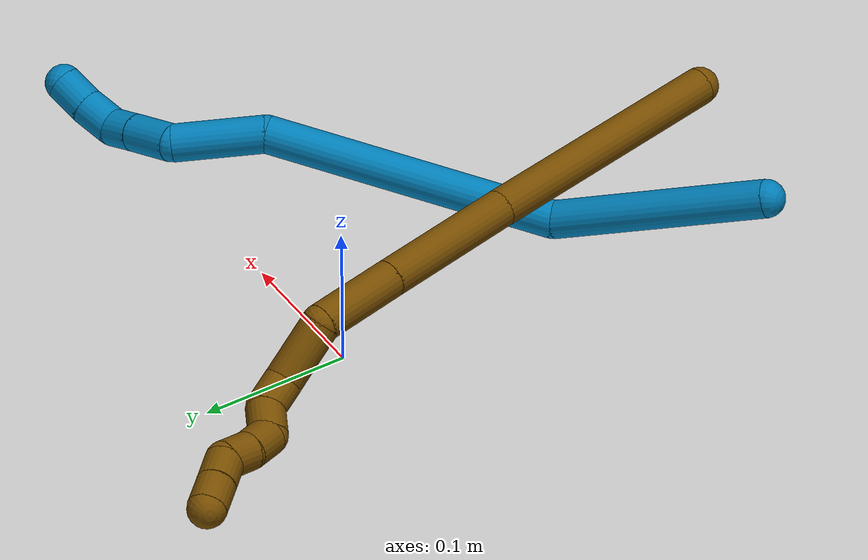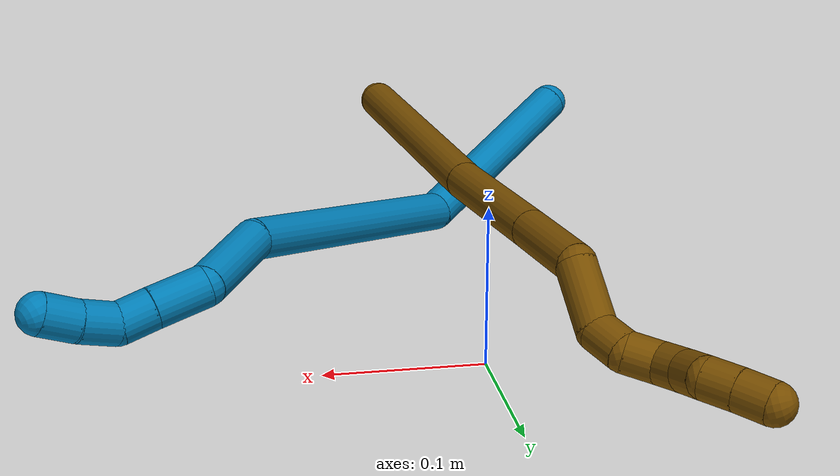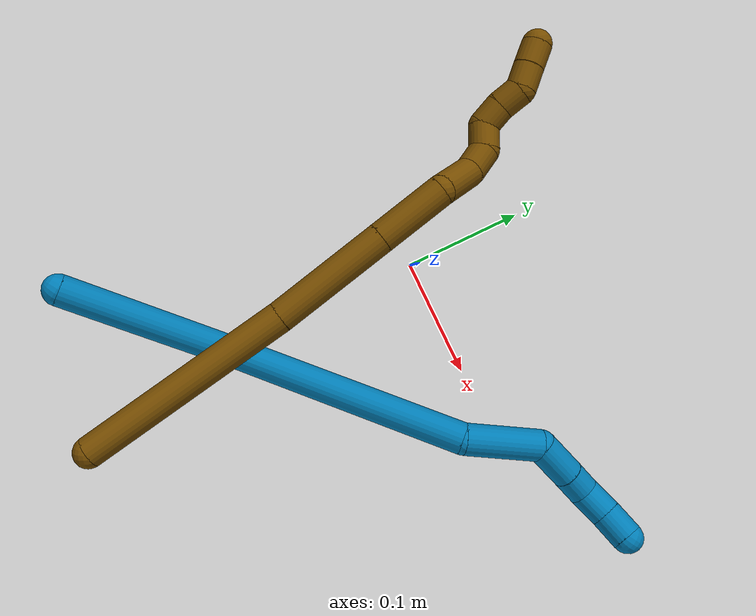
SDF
<sdf version="1.7">
 <world name="default">
  <model name="9">
   <static>0</static>
   <link name="9">
    <collision name="collision-cylinder-e_1_1_4">
     <pose>-0.017421 0.004072 -0.070111 -3.08358 -0.243157 2.67526</pose>
     <geometry><cylinder><radius>0.0125</radius><length>0.144715</length></cylinder></geometry>
     <surface>
      <friction><ode><mu>1.16</mu><mu2>1.16</mu2><slip1>0</slip1><slip2>0</slip2></ode></friction>
      <contact><ode><kp>1e+06</kp><kd>1</kd><max_vel>0</max_vel><min_depth>0.001</min_depth></ode></contact>
     </surface>
    </collision>
    <visual name="visual-cylinder-e_1_1_4">
     <pose>-0.017421 0.004072 -0.070111 -3.08358 -0.243157 2.67526</pose>
     <geometry><cylinder><radius>0.0125</radius><length>0.144715</length></cylinder></geometry>
     <material><ambient>0 0.490196 0.709804 1</ambient></material>
    </visual>
    <collision name="collision-cylinder-e_2_4_5">
     <pose>-0.025074 0.049761 -0.226993 -2.69438 0.101159 -0.438072</pose>
     <geometry><cylinder><radius>0.0125</radius><length>0.19346</length></cylinder></geometry>
     <surface>
      <friction><ode><mu>1.16</mu><mu2>1.16</mu2><slip1>0</slip1><slip2>0</slip2></ode></friction>
      <contact><ode><kp>1e+06</kp><kd>1</kd><max_vel>0</max_vel><min_depth>0.001</min_depth></ode></contact>
     </surface>
    </collision>
    <visual name="visual-cylinder-e_2_4_5">
     <pose>-0.025074 0.049761 -0.226993 -2.69438 0.101159 -0.438072</pose>
     <geometry><cylinder><radius>0.0125</radius><length>0.19346</length></cylinder></geometry>
     <material><ambient>0 0.490196 0.709804 1</ambient></material>
    </visual>
    <collision name="collision-cylinder-e_3_5_6">
     <pose>-0.023821 0.103067 -0.340692 -2.73207 -0.282326 1.20022</pose>
     <geometry><cylinder><radius>0.0125</radius><length>0.06113</length></cylinder></geometry>
     <surface>
      <friction><ode><mu>1.16</mu><mu2>1.16</mu2><slip1>0</slip1><slip2>0</slip2></ode></friction>
      <contact><ode><kp>1e+06</kp><kd>1</kd><max_vel>0</max_vel><min_depth>0.001</min_depth></ode></contact>
     </surface>
    </collision>
    <visual name="visual-cylinder-e_3_5_6">
     <pose>-0.023821 0.103067 -0.340692 -2.73207 -0.282326 1.20022</pose>
     <geometry><cylinder><radius>0.0125</radius><length>0.06113</length></cylinder></geometry>
     <material><ambient>0 0.490196 0.709804 1</ambient></material>
    </visual>
    <collision name="collision-cylinder-e_4_6_7">
     <pose>-0.030659 0.111776 -0.383862 2.96018 0.101248 1.01647</pose>
     <geometry><cylinder><radius>0.0125</radius><length>0.033197</length></cylinder></geometry>
     <surface>
      <friction><ode><mu>1.16</mu><mu2>1.16</mu2><slip1>0</slip1><slip2>0</slip2></ode></friction>
      <contact><ode><kp>1e+06</kp><kd>1</kd><max_vel>0</max_vel><min_depth>0.001</min_depth></ode></contact>
     </surface>
    </collision>
    <visual name="visual-cylinder-e_4_6_7">
     <pose>-0.030659 0.111776 -0.383862 2.96018 0.101248 1.01647</pose>
     <geometry><cylinder><radius>0.0125</radius><length>0.033197</length></cylinder></geometry>
     <material><ambient>0 0.490196 0.709804 1</ambient></material>
    </visual>
    <collision name="collision-cylinder-e_5_7_8">
     <pose>-0.028093 0.106565 -0.410459 2.92938 0.083665 0.748913</pose>
     <geometry><cylinder><radius>0.0125</radius><length>0.021258</length></cylinder></geometry>
     <surface>
      <friction><ode><mu>1.16</mu><mu2>1.16</mu2><slip1>0</slip1><slip2>0</slip2></ode></friction>
      <contact><ode><kp>1e+06</kp><kd>1</kd><max_vel>0</max_vel><min_depth>0.001</min_depth></ode></contact>
     </surface>
    </collision>
    <visual name="visual-cylinder-e_5_7_8">
     <pose>-0.028093 0.106565 -0.410459 2.92938 0.083665 0.748913</pose>
     <geometry><cylinder><radius>0.0125</radius><length>0.021258</length></cylinder></geometry>
     <material><ambient>0 0.490196 0.709804 1</ambient></material>
    </visual>
    <collision name="collision-cylinder-e_6_8_9">
     <pose>-0.021882 0.106139 -0.431165 -2.96898 0.468865 -2.44644</pose>
     <geometry><cylinder><radius>0.0125</radius><length>0.023559</length></cylinder></geometry>
     <surface>
      <friction><ode><mu>1.16</mu><mu2>1.16</mu2><slip1>0</slip1><slip2>0</slip2></ode></friction>
      <contact><ode><kp>1e+06</kp><kd>1</kd><max_vel>0</max_vel><min_depth>0.001</min_depth></ode></contact>
     </surface>
    </collision>
    <visual name="visual-cylinder-e_6_8_9">
     <pose>-0.021882 0.106139 -0.431165 -2.96898 0.468865 -2.44644</pose>
     <geometry><cylinder><radius>0.0125</radius><length>0.023559</length></cylinder></geometry>
     <material><ambient>0 0.490196 0.709804 1</ambient></material>
    </visual>
    <collision name="collision-cylinder-e_7_9_2">
     <pose>-0.010359 0.109957 -0.450798 -2.92804 0.578359 -2.45001</pose>
     <geometry><cylinder><radius>0.0125</radius><length>0.022681</length></cylinder></geometry>
     <surface>
      <friction><ode><mu>1.16</mu><mu2>1.16</mu2><slip1>0</slip1><slip2>0</slip2></ode></friction>
      <contact><ode><kp>1e+06</kp><kd>1</kd><max_vel>0</max_vel><min_depth>0.001</min_depth></ode></contact>
     </surface>
    </collision>
    <visual name="visual-cylinder-e_7_9_2">
     <pose>-0.010359 0.109957 -0.450798 -2.92804 0.578359 -2.45001</pose>
     <geometry><cylinder><radius>0.0125</radius><length>0.022681</length></cylinder></geometry>
     <material><ambient>0 0.490196 0.709804 1</ambient></material>
    </visual>
    <collision name="collision-sphere-2">
     <pose>-0.00416 0.111969 -0.460078 0 -0 0</pose>
     <geometry><sphere><radius>0.0125</radius></sphere></geometry>
     <surface>
      <friction><ode><mu>1.16</mu><mu2>1.16</mu2><slip1>0</slip1><slip2>0</slip2></ode></friction>
      <contact><ode><kp>1e+06</kp><kd>1</kd><max_vel>0</max_vel><min_depth>0.001</min_depth></ode></contact>
     </surface>
    </collision>
    <visual name="visual-sphere-2">
     <pose>-0.00416 0.111969 -0.460078 0 -0 0</pose>
     <geometry><sphere><radius>0.0125</radius></sphere></geometry>
     <material><ambient>0 0.490196 0.709804 1</ambient></material>
    </visual>
    <collision name="collision-sphere-9">
     <pose>-0.016559 0.107944 -0.441517 0 -0 0</pose>
     <geometry><sphere><radius>0.0125</radius></sphere></geometry>
     <surface>
      <friction><ode><mu>1.16</mu><mu2>1.16</mu2><slip1>0</slip1><slip2>0</slip2></ode></friction>
      <contact><ode><kp>1e+06</kp><kd>1</kd><max_vel>0</max_vel><min_depth>0.001</min_depth></ode></contact>
     </surface>
    </collision>
    <visual name="visual-sphere-9">
     <pose>-0.016559 0.107944 -0.441517 0 -0 0</pose>
     <geometry><sphere><radius>0.0125</radius></sphere></geometry>
     <material><ambient>0 0.490196 0.709804 1</ambient></material>
    </visual>
    <collision name="collision-sphere-4">
     <pose>-0.034843 0.008144 -0.140221 0 -0 0</pose>
     <geometry><sphere><radius>0.0125</radius></sphere></geometry>
     <surface>
      <friction><ode><mu>1.16</mu><mu2>1.16</mu2><slip1>0</slip1><slip2>0</slip2></ode></friction>
      <contact><ode><kp>1e+06</kp><kd>1</kd><max_vel>0</max_vel><min_depth>0.001</min_depth></ode></contact>
     </surface>
    </collision>
    <visual name="visual-sphere-4">
     <pose>-0.034843 0.008144 -0.140221 0 -0 0</pose>
     <geometry><sphere><radius>0.0125</radius></sphere></geometry>
     <material><ambient>0 0.490196 0.709804 1</ambient></material>
    </visual>
    <collision name="collision-sphere-1">
     <geometry><sphere><radius>0.0125</radius></sphere></geometry>
     <surface>
      <friction><ode><mu>1.16</mu><mu2>1.16</mu2><slip1>0</slip1><slip2>0</slip2></ode></friction>
      <contact><ode><kp>1e+06</kp><kd>1</kd><max_vel>0</max_vel><min_depth>0.001</min_depth></ode></contact>
     </surface>
    </collision>
    <visual name="visual-sphere-1">
     <geometry><sphere><radius>0.0125</radius></sphere></geometry>
     <material><ambient>0 0.490196 0.709804 1</ambient></material>
    </visual>
    <collision name="collision-sphere-8">
     <pose>-0.027204 0.104334 -0.420813 0 -0 0</pose>
     <geometry><sphere><radius>0.0125</radius></sphere></geometry>
     <surface>
      <friction><ode><mu>1.16</mu><mu2>1.16</mu2><slip1>0</slip1><slip2>0</slip2></ode></friction>
      <contact><ode><kp>1e+06</kp><kd>1</kd><max_vel>0</max_vel><min_depth>0.001</min_depth></ode></contact>
     </surface>
    </collision>
    <visual name="visual-sphere-8">
     <pose>-0.027204 0.104334 -0.420813 0 -0 0</pose>
     <geometry><sphere><radius>0.0125</radius></sphere></geometry>
     <material><ambient>0 0.490196 0.709804 1</ambient></material>
    </visual>
    <collision name="collision-sphere-5">
     <pose>-0.015306 0.091378 -0.313764 0 -0 0</pose>
     <geometry><sphere><radius>0.0125</radius></sphere></geometry>
     <surface>
      <friction><ode><mu>1.16</mu><mu2>1.16</mu2><slip1>0</slip1><slip2>0</slip2></ode></friction>
      <contact><ode><kp>1e+06</kp><kd>1</kd><max_vel>0</max_vel><min_depth>0.001</min_depth></ode></contact>
     </surface>
    </collision>
    <visual name="visual-sphere-5">
     <pose>-0.015306 0.091378 -0.313764 0 -0 0</pose>
     <geometry><sphere><radius>0.0125</radius></sphere></geometry>
     <material><ambient>0 0.490196 0.709804 1</ambient></material>
    </visual>
    <collision name="collision-sphere-6">
     <pose>-0.032336 0.114755 -0.36762 0 -0 0</pose>
     <geometry><sphere><radius>0.0125</radius></sphere></geometry>
     <surface>
      <friction><ode><mu>1.16</mu><mu2>1.16</mu2><slip1>0</slip1><slip2>0</slip2></ode></friction>
      <contact><ode><kp>1e+06</kp><kd>1</kd><max_vel>0</max_vel><min_depth>0.001</min_depth></ode></contact>
     </surface>
    </collision>
    <visual name="visual-sphere-6">
     <pose>-0.032336 0.114755 -0.36762 0 -0 0</pose>
     <geometry><sphere><radius>0.0125</radius></sphere></geometry>
     <material><ambient>0 0.490196 0.709804 1</ambient></material>
    </visual>
    <collision name="collision-sphere-7">
     <pose>-0.028981 0.108796 -0.400105 0 -0 0</pose>
     <geometry><sphere><radius>0.0125</radius></sphere></geometry>
     <surface>
      <friction><ode><mu>1.16</mu><mu2>1.16</mu2><slip1>0</slip1><slip2>0</slip2></ode></friction>
      <contact><ode><kp>1e+06</kp><kd>1</kd><max_vel>0</max_vel><min_depth>0.001</min_depth></ode></contact>
     </surface>
    </collision>
    <visual name="visual-sphere-7">
     <pose>-0.028981 0.108796 -0.400105 0 -0 0</pose>
     <geometry><sphere><radius>0.0125</radius></sphere></geometry>
     <material><ambient>0 0.490196 0.709804 1</ambient></material>
    </visual>
    <inertial>
     <pose>-0.022387 0.054974 -0.233475 0 -0 0</pose>
     <mass>0.5</mass>
     <inertia>
      <ixx>0.000211</ixx>
      <ixy>0</ixy>
      <ixz>0</ixz>
      <iyy>-0.000375</iyy>
      <iyz>0</iyz>
      <izz>-0.000317</izz>
     </inertia>
    </inertial>
   </link>
   <pose>-0.100203 -0.252939 0.089243 1.29206 -0.811917 -0.843308</pose>
  </model>
  <model name="12">
   <static>0</static>
   <link name="12">
    <collision name="collision-cylinder-e_1_1_4">
     <pose>-0.063791 0.046393 -0.039397 -2.27483 -0.808878 1.49296</pose>
     <geometry><cylinder><radius>0.0125</radius><length>0.176337</length></cylinder></geometry>
     <surface>
      <friction><ode><mu>1.16</mu><mu2>1.16</mu2><slip1>0</slip1><slip2>0</slip2></ode></friction>
      <contact><ode><kp>1e+06</kp><kd>1</kd><max_vel>0</max_vel><min_depth>0.001</min_depth></ode></contact>
     </surface>
    </collision>
    <visual name="visual-cylinder-e_1_1_4">
     <pose>-0.063791 0.046393 -0.039397 -2.27483 -0.808878 1.49296</pose>
     <geometry><cylinder><radius>0.0125</radius><length>0.176337</length></cylinder></geometry>
     <material><ambient>0.466667 0.301961 0 1</ambient></material>
    </visual>
    <collision name="collision-cylinder-e_2_4_5">
     <pose>-0.162237 0.117219 -0.103154 -2.35468 -0.787599 1.57177</pose>
     <geometry><cylinder><radius>0.0125</radius><length>0.097803</length></cylinder></geometry>
     <surface>
      <friction><ode><mu>1.16</mu><mu2>1.16</mu2><slip1>0</slip1><slip2>0</slip2></ode></friction>
      <contact><ode><kp>1e+06</kp><kd>1</kd><max_vel>0</max_vel><min_depth>0.001</min_depth></ode></contact>
     </surface>
    </collision>
    <visual name="visual-cylinder-e_2_4_5">
     <pose>-0.162237 0.117219 -0.103154 -2.35468 -0.787599 1.57177</pose>
     <geometry><cylinder><radius>0.0125</radius><length>0.097803</length></cylinder></geometry>
     <material><ambient>0.466667 0.301961 0 1</ambient></material>
    </visual>
    <collision name="collision-cylinder-e_3_5_6">
     <pose>-0.217602 0.156578 -0.142095 -2.34455 -0.781664 1.54913</pose>
     <geometry><cylinder><radius>0.0125</radius><length>0.058796</length></cylinder></geometry>
     <surface>
      <friction><ode><mu>1.16</mu><mu2>1.16</mu2><slip1>0</slip1><slip2>0</slip2></ode></friction>
      <contact><ode><kp>1e+06</kp><kd>1</kd><max_vel>0</max_vel><min_depth>0.001</min_depth></ode></contact>
     </surface>
    </collision>
    <visual name="visual-cylinder-e_3_5_6">
     <pose>-0.217602 0.156578 -0.142095 -2.34455 -0.781664 1.54913</pose>
     <geometry><cylinder><radius>0.0125</radius><length>0.058796</length></cylinder></geometry>
     <material><ambient>0.466667 0.301961 0 1</ambient></material>
    </visual>
    <collision name="collision-cylinder-e_4_6_7">
     <pose>-0.24463 0.19175 -0.159075 -1.68874 -0.300529 0.337569</pose>
     <geometry><cylinder><radius>0.0125</radius><length>0.042691</length></cylinder></geometry>
     <surface>
      <friction><ode><mu>1.16</mu><mu2>1.16</mu2><slip1>0</slip1><slip2>0</slip2></ode></friction>
      <contact><ode><kp>1e+06</kp><kd>1</kd><max_vel>0</max_vel><min_depth>0.001</min_depth></ode></contact>
     </surface>
    </collision>
    <visual name="visual-cylinder-e_4_6_7">
     <pose>-0.24463 0.19175 -0.159075 -1.68874 -0.300529 0.337569</pose>
     <geometry><cylinder><radius>0.0125</radius><length>0.042691</length></cylinder></geometry>
     <material><ambient>0.466667 0.301961 0 1</ambient></material>
    </visual>
    <collision name="collision-cylinder-e_5_7_8">
     <pose>-0.255646 0.21969 -0.168294 -2.29614 -0.428549 0.901133</pose>
     <geometry><cylinder><radius>0.0125</radius><length>0.022605</length></cylinder></geometry>
     <surface>
      <friction><ode><mu>1.16</mu><mu2>1.16</mu2><slip1>0</slip1><slip2>0</slip2></ode></friction>
      <contact><ode><kp>1e+06</kp><kd>1</kd><max_vel>0</max_vel><min_depth>0.001</min_depth></ode></contact>
     </surface>
    </collision>
    <visual name="visual-cylinder-e_5_7_8">
     <pose>-0.255646 0.21969 -0.168294 -2.29614 -0.428549 0.901133</pose>
     <geometry><cylinder><radius>0.0125</radius><length>0.022605</length></cylinder></geometry>
     <material><ambient>0.466667 0.301961 0 1</ambient></material>
    </visual>
    <collision name="collision-cylinder-e_6_8_9">
     <pose>-0.259269 0.232943 -0.184116 -2.58818 0.101164 -0.352818</pose>
     <geometry><cylinder><radius>0.0125</radius><length>0.02127</length></cylinder></geometry>
     <surface>
      <friction><ode><mu>1.16</mu><mu2>1.16</mu2><slip1>0</slip1><slip2>0</slip2></ode></friction>
      <contact><ode><kp>1e+06</kp><kd>1</kd><max_vel>0</max_vel><min_depth>0.001</min_depth></ode></contact>
     </surface>
    </collision>
    <visual name="visual-cylinder-e_6_8_9">
     <pose>-0.259269 0.232943 -0.184116 -2.58818 0.101164 -0.352818</pose>
     <geometry><cylinder><radius>0.0125</radius><length>0.02127</length></cylinder></geometry>
     <material><ambient>0.466667 0.301961 0 1</ambient></material>
    </visual>
    <collision name="collision-cylinder-e_7_9_10">
     <pose>-0.26456 0.242246 -0.200102 -2.64983 -0.676799 1.90269</pose>
     <geometry><cylinder><radius>0.0125</radius><length>0.020327</length></cylinder></geometry>
     <surface>
      <friction><ode><mu>1.16</mu><mu2>1.16</mu2><slip1>0</slip1><slip2>0</slip2></ode></friction>
      <contact><ode><kp>1e+06</kp><kd>1</kd><max_vel>0</max_vel><min_depth>0.001</min_depth></ode></contact>
     </surface>
    </collision>
    <visual name="visual-cylinder-e_7_9_10">
     <pose>-0.26456 0.242246 -0.200102 -2.64983 -0.676799 1.90269</pose>
     <geometry><cylinder><radius>0.0125</radius><length>0.020327</length></cylinder></geometry>
     <material><ambient>0.466667 0.301961 0 1</ambient></material>
    </visual>
    <collision name="collision-cylinder-e_8_10_11">
     <pose>-0.278709 0.248909 -0.212725 -2.66343 -0.886397 2.19285</pose>
     <geometry><cylinder><radius>0.0125</radius><length>0.02009</length></cylinder></geometry>
     <surface>
      <friction><ode><mu>1.16</mu><mu2>1.16</mu2><slip1>0</slip1><slip2>0</slip2></ode></friction>
      <contact><ode><kp>1e+06</kp><kd>1</kd><max_vel>0</max_vel><min_depth>0.001</min_depth></ode></contact>
     </surface>
    </collision>
    <visual name="visual-cylinder-e_8_10_11">
     <pose>-0.278709 0.248909 -0.212725 -2.66343 -0.886397 2.19285</pose>
     <geometry><cylinder><radius>0.0125</radius><length>0.02009</length></cylinder></geometry>
     <material><ambient>0.466667 0.301961 0 1</ambient></material>
    </visual>
    <collision name="collision-cylinder-e_9_11_12">
     <pose>-0.289025 0.256964 -0.226568 -2.58257 -0.255988 0.843011</pose>
     <geometry><cylinder><radius>0.0125</radius><length>0.020008</length></cylinder></geometry>
     <surface>
      <friction><ode><mu>1.16</mu><mu2>1.16</mu2><slip1>0</slip1><slip2>0</slip2></ode></friction>
      <contact><ode><kp>1e+06</kp><kd>1</kd><max_vel>0</max_vel><min_depth>0.001</min_depth></ode></contact>
     </surface>
    </collision>
    <visual name="visual-cylinder-e_9_11_12">
     <pose>-0.289025 0.256964 -0.226568 -2.58257 -0.255988 0.843011</pose>
     <geometry><cylinder><radius>0.0125</radius><length>0.020008</length></cylinder></geometry>
     <material><ambient>0.466667 0.301961 0 1</ambient></material>
    </visual>
    <collision name="collision-cylinder-e_10_12_2">
     <pose>-0.294159 0.267539 -0.242793 -2.54549 -0.262242 0.810988</pose>
     <geometry><cylinder><radius>0.0125</radius><length>0.020071</length></cylinder></geometry>
     <surface>
      <friction><ode><mu>1.16</mu><mu2>1.16</mu2><slip1>0</slip1><slip2>0</slip2></ode></friction>
      <contact><ode><kp>1e+06</kp><kd>1</kd><max_vel>0</max_vel><min_depth>0.001</min_depth></ode></contact>
     </surface>
    </collision>
    <visual name="visual-cylinder-e_10_12_2">
     <pose>-0.294159 0.267539 -0.242793 -2.54549 -0.262242 0.810988</pose>
     <geometry><cylinder><radius>0.0125</radius><length>0.020071</length></cylinder></geometry>
     <material><ambient>0.466667 0.301961 0 1</ambient></material>
    </visual>
    <collision name="collision-sphere-2">
     <pose>-0.296761 0.27298 -0.250814 0 -0 0</pose>
     <geometry><sphere><radius>0.0125</radius></sphere></geometry>
     <surface>
      <friction><ode><mu>1.16</mu><mu2>1.16</mu2><slip1>0</slip1><slip2>0</slip2></ode></friction>
      <contact><ode><kp>1e+06</kp><kd>1</kd><max_vel>0</max_vel><min_depth>0.001</min_depth></ode></contact>
     </surface>
    </collision>
    <visual name="visual-sphere-2">
     <pose>-0.296761 0.27298 -0.250814 0 -0 0</pose>
     <geometry><sphere><radius>0.0125</radius></sphere></geometry>
     <material><ambient>0.466667 0.301961 0 1</ambient></material>
    </visual>
    <collision name="collision-sphere-12">
     <pose>-0.291558 0.262097 -0.234772 0 -0 0</pose>
     <geometry><sphere><radius>0.0125</radius></sphere></geometry>
     <surface>
      <friction><ode><mu>1.16</mu><mu2>1.16</mu2><slip1>0</slip1><slip2>0</slip2></ode></friction>
      <contact><ode><kp>1e+06</kp><kd>1</kd><max_vel>0</max_vel><min_depth>0.001</min_depth></ode></contact>
     </surface>
    </collision>
    <visual name="visual-sphere-12">
     <pose>-0.291558 0.262097 -0.234772 0 -0 0</pose>
     <geometry><sphere><radius>0.0125</radius></sphere></geometry>
     <material><ambient>0.466667 0.301961 0 1</ambient></material>
    </visual>
    <collision name="collision-sphere-11">
     <pose>-0.286492 0.251832 -0.218363 0 -0 0</pose>
     <geometry><sphere><radius>0.0125</radius></sphere></geometry>
     <surface>
      <friction><ode><mu>1.16</mu><mu2>1.16</mu2><slip1>0</slip1><slip2>0</slip2></ode></friction>
      <contact><ode><kp>1e+06</kp><kd>1</kd><max_vel>0</max_vel><min_depth>0.001</min_depth></ode></contact>
     </surface>
    </collision>
    <visual name="visual-sphere-11">
     <pose>-0.286492 0.251832 -0.218363 0 -0 0</pose>
     <geometry><sphere><radius>0.0125</radius></sphere></geometry>
     <material><ambient>0.466667 0.301961 0 1</ambient></material>
    </visual>
    <collision name="collision-sphere-10">
     <pose>-0.270926 0.245987 -0.207086 0 -0 0</pose>
     <geometry><sphere><radius>0.0125</radius></sphere></geometry>
     <surface>
      <friction><ode><mu>1.16</mu><mu2>1.16</mu2><slip1>0</slip1><slip2>0</slip2></ode></friction>
      <contact><ode><kp>1e+06</kp><kd>1</kd><max_vel>0</max_vel><min_depth>0.001</min_depth></ode></contact>
     </surface>
    </collision>
    <visual name="visual-sphere-10">
     <pose>-0.270926 0.245987 -0.207086 0 -0 0</pose>
     <geometry><sphere><radius>0.0125</radius></sphere></geometry>
     <material><ambient>0.466667 0.301961 0 1</ambient></material>
    </visual>
    <collision name="collision-sphere-9">
     <pose>-0.258195 0.238505 -0.193117 0 -0 0</pose>
     <geometry><sphere><radius>0.0125</radius></sphere></geometry>
     <surface>
      <friction><ode><mu>1.16</mu><mu2>1.16</mu2><slip1>0</slip1><slip2>0</slip2></ode></friction>
      <contact><ode><kp>1e+06</kp><kd>1</kd><max_vel>0</max_vel><min_depth>0.001</min_depth></ode></contact>
     </surface>
    </collision>
    <visual name="visual-sphere-9">
     <pose>-0.258195 0.238505 -0.193117 0 -0 0</pose>
     <geometry><sphere><radius>0.0125</radius></sphere></geometry>
     <material><ambient>0.466667 0.301961 0 1</ambient></material>
    </visual>
    <collision name="collision-sphere-4">
     <pose>-0.127582 0.092786 -0.078794 0 -0 0</pose>
     <geometry><sphere><radius>0.0125</radius></sphere></geometry>
     <surface>
      <friction><ode><mu>1.16</mu><mu2>1.16</mu2><slip1>0</slip1><slip2>0</slip2></ode></friction>
      <contact><ode><kp>1e+06</kp><kd>1</kd><max_vel>0</max_vel><min_depth>0.001</min_depth></ode></contact>
     </surface>
    </collision>
    <visual name="visual-sphere-4">
     <pose>-0.127582 0.092786 -0.078794 0 -0 0</pose>
     <geometry><sphere><radius>0.0125</radius></sphere></geometry>
     <material><ambient>0.466667 0.301961 0 1</ambient></material>
    </visual>
    <collision name="collision-sphere-1">
     <geometry><sphere><radius>0.0125</radius></sphere></geometry>
     <surface>
      <friction><ode><mu>1.16</mu><mu2>1.16</mu2><slip1>0</slip1><slip2>0</slip2></ode></friction>
      <contact><ode><kp>1e+06</kp><kd>1</kd><max_vel>0</max_vel><min_depth>0.001</min_depth></ode></contact>
     </surface>
    </collision>
    <visual name="visual-sphere-1">
     <geometry><sphere><radius>0.0125</radius></sphere></geometry>
     <material><ambient>0.466667 0.301961 0 1</ambient></material>
    </visual>
    <collision name="collision-sphere-8">
     <pose>-0.260343 0.227382 -0.175114 0 -0 0</pose>
     <geometry><sphere><radius>0.0125</radius></sphere></geometry>
     <surface>
      <friction><ode><mu>1.16</mu><mu2>1.16</mu2><slip1>0</slip1><slip2>0</slip2></ode></friction>
      <contact><ode><kp>1e+06</kp><kd>1</kd><max_vel>0</max_vel><min_depth>0.001</min_depth></ode></contact>
     </surface>
    </collision>
    <visual name="visual-sphere-8">
     <pose>-0.260343 0.227382 -0.175114 0 -0 0</pose>
     <geometry><sphere><radius>0.0125</radius></sphere></geometry>
     <material><ambient>0.466667 0.301961 0 1</ambient></material>
    </visual>
    <collision name="collision-sphere-5">
     <pose>-0.196892 0.141653 -0.127514 0 -0 0</pose>
     <geometry><sphere><radius>0.0125</radius></sphere></geometry>
     <surface>
      <friction><ode><mu>1.16</mu><mu2>1.16</mu2><slip1>0</slip1><slip2>0</slip2></ode></friction>
      <contact><ode><kp>1e+06</kp><kd>1</kd><max_vel>0</max_vel><min_depth>0.001</min_depth></ode></contact>
     </surface>
    </collision>
    <visual name="visual-sphere-5">
     <pose>-0.196892 0.141653 -0.127514 0 -0 0</pose>
     <geometry><sphere><radius>0.0125</radius></sphere></geometry>
     <material><ambient>0.466667 0.301961 0 1</ambient></material>
    </visual>
    <collision name="collision-sphere-6">
     <pose>-0.238311 0.171502 -0.156676 0 -0 0</pose>
     <geometry><sphere><radius>0.0125</radius></sphere></geometry>
     <surface>
      <friction><ode><mu>1.16</mu><mu2>1.16</mu2><slip1>0</slip1><slip2>0</slip2></ode></friction>
      <contact><ode><kp>1e+06</kp><kd>1</kd><max_vel>0</max_vel><min_depth>0.001</min_depth></ode></contact>
     </surface>
    </collision>
    <visual name="visual-sphere-6">
     <pose>-0.238311 0.171502 -0.156676 0 -0 0</pose>
     <geometry><sphere><radius>0.0125</radius></sphere></geometry>
     <material><ambient>0.466667 0.301961 0 1</ambient></material>
    </visual>
    <collision name="collision-sphere-7">
     <pose>-0.250949 0.211997 -0.161474 0 -0 0</pose>
     <geometry><sphere><radius>0.0125</radius></sphere></geometry>
     <surface>
      <friction><ode><mu>1.16</mu><mu2>1.16</mu2><slip1>0</slip1><slip2>0</slip2></ode></friction>
      <contact><ode><kp>1e+06</kp><kd>1</kd><max_vel>0</max_vel><min_depth>0.001</min_depth></ode></contact>
     </surface>
    </collision>
    <visual name="visual-sphere-7">
     <pose>-0.250949 0.211997 -0.161474 0 -0 0</pose>
     <geometry><sphere><radius>0.0125</radius></sphere></geometry>
     <material><ambient>0.466667 0.301961 0 1</ambient></material>
    </visual>
    <inertial>
     <pose>-0.168623 0.134789 -0.115299 0 -0 0</pose>
     <mass>0.5</mass>
     <inertia><ixx>0.000411</ixx><ixy>0</ixy><ixz>0</ixz><iyy>0.0007</iyy><iyz>0</iyz><izz>8.6e-05</izz></inertia>
    </inertial>
   </link>
   <pose>0.019863 -0.286003 0.087571 -1.93813 0.373086 -2.05736</pose>
  </model>
 </world>
</sdf>
